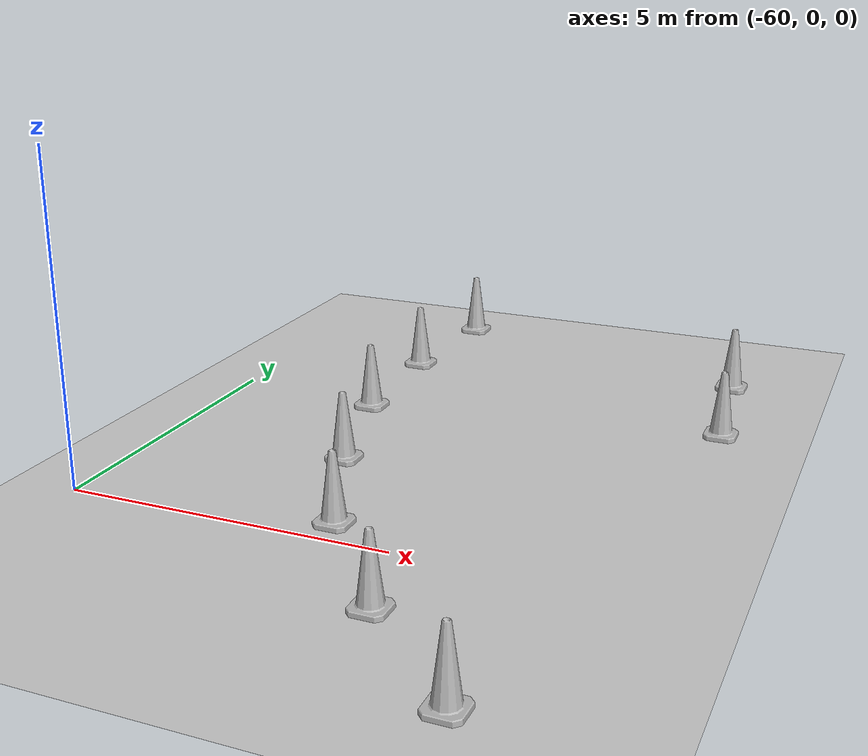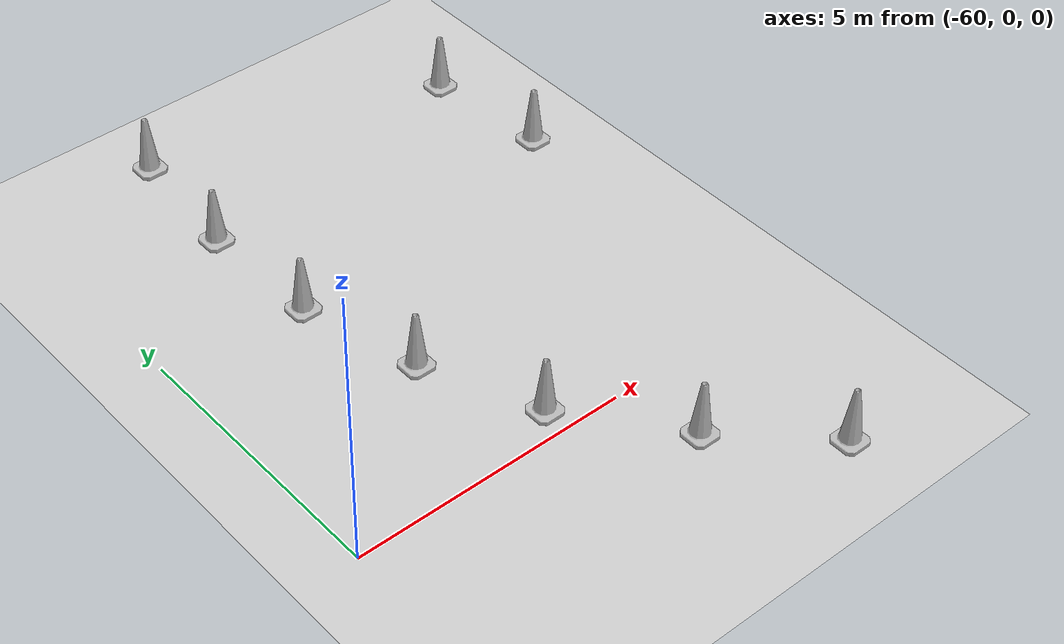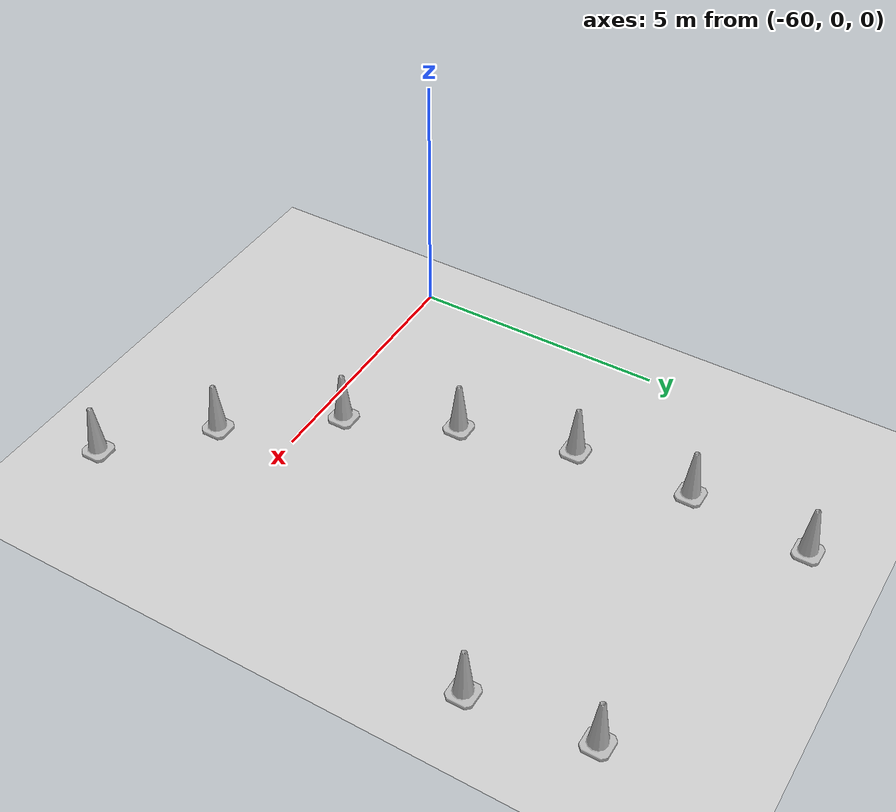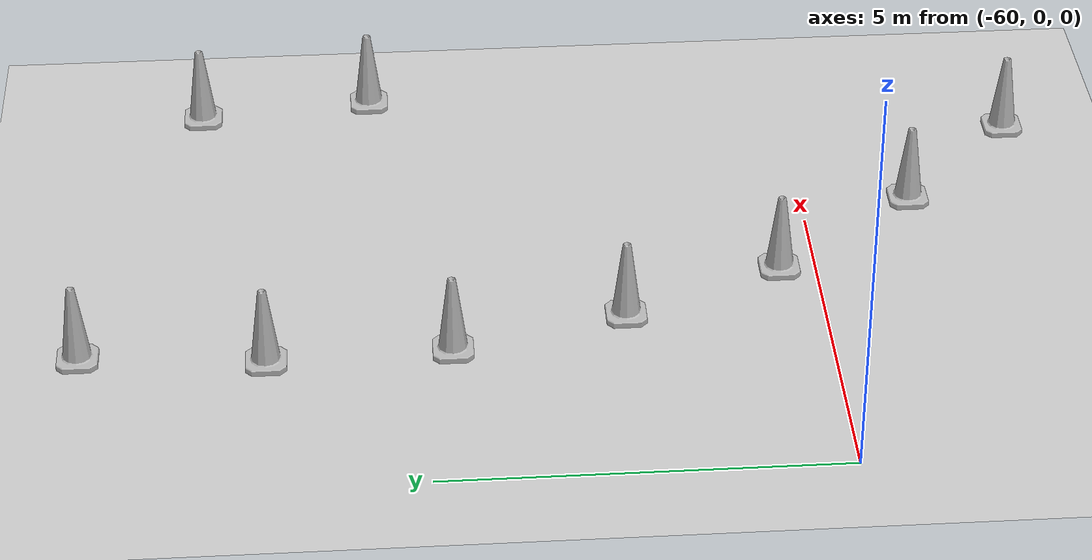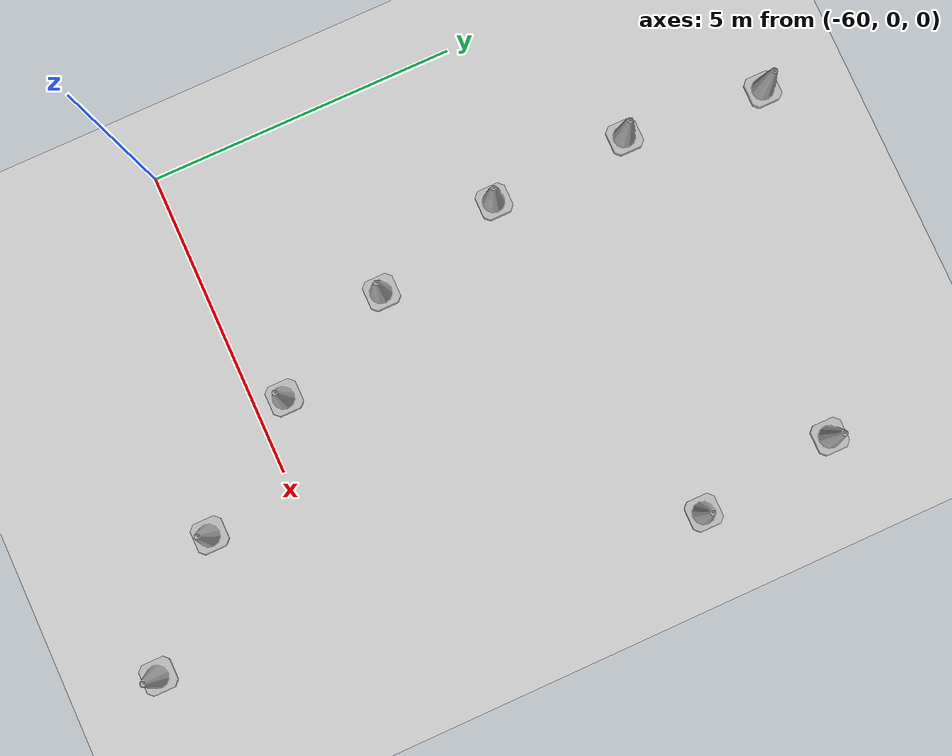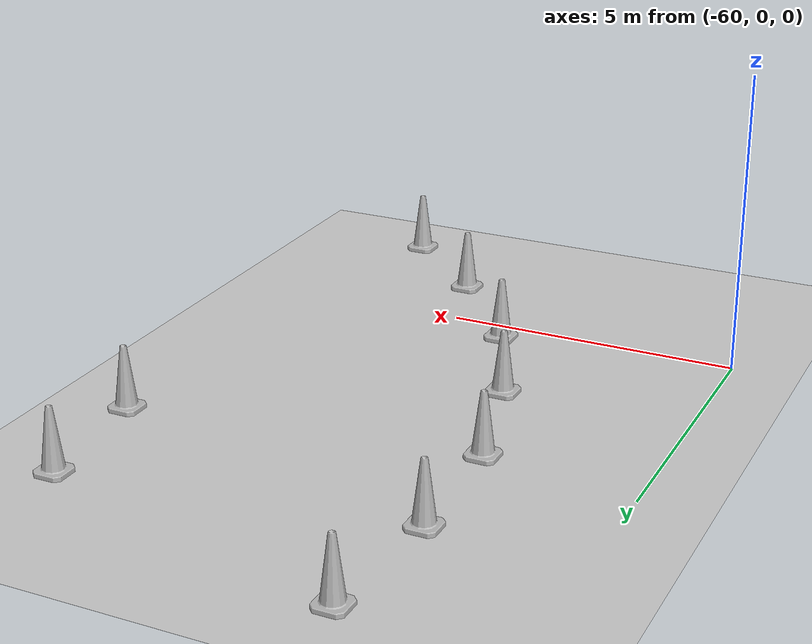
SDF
<sdf version="1.7">
 <world name="default">
  <model name="ground_plane">
   <static>1</static>
   <link name="link">
    <collision name="collision">
     <geometry><plane><normal>0 0 1</normal><size>125 125</size></plane></geometry>
     <surface>
      <contact><collide_bitmask>65535</collide_bitmask></contact>
      <friction><ode><mu>100</mu><mu2>50</mu2></ode></friction>
     </surface>
    </collision>
    <visual name="visual">
     <cast_shadows>0</cast_shadows>
     <geometry><plane><normal>0 0 1</normal><size>125 125</size></plane></geometry>
     <material>
      <script><uri>file://media/materials/scripts/gazebo.material</uri><name>Gazebo/Grey</name></script>
     </material>
    </visual>
   </link>
  </model>
  <model name="Construction Cone 139">
   <link name="link">
    <collision name="collision">
     <geometry>
      <mesh><scale>10 10 10</scale><uri>model://construction_cone/meshes/construction_cone.dae</uri></mesh>
     </geometry>
    </collision>
    <visual name="visual">
     <geometry>
      <mesh><scale>10 10 10</scale><uri>model://construction_cone/meshes/construction_cone.dae</uri></mesh>
     </geometry>
    </visual>
    <inertial>
     <inertia><ixx>1</ixx><ixy>0</ixy><ixz>0</ixz><iyy>1</iyy><iyz>0</iyz><izz>1</izz></inertia>
     <mass>1</mass>
    </inertial>
   </link>
   <pose>-57.38775161880874 9.245355827656049 0 0 0 0</pose>
  </model>
  <model name="Construction Cone 145">
   <link name="link">
    <collision name="collision">
     <geometry>
      <mesh><scale>10 10 10</scale><uri>model://construction_cone/meshes/construction_cone.dae</uri></mesh>
     </geometry>
    </collision>
    <visual name="visual">
     <geometry>
      <mesh><scale>10 10 10</scale><uri>model://construction_cone/meshes/construction_cone.dae</uri></mesh>
     </geometry>
    </visual>
    <inertial>
     <inertia><ixx>1</ixx><ixy>0</ixy><ixz>0</ixz><iyy>1</iyy><iyz>0</iyz><izz>1</izz></inertia>
     <mass>1</mass>
    </inertial>
   </link>
   <pose>-52.041751618808746 7.854855827656046 0 0 0 0</pose>
  </model>
  <model name="Construction Cone 151">
   <link name="link">
    <collision name="collision">
     <geometry>
      <mesh><scale>10 10 10</scale><uri>model://construction_cone/meshes/construction_cone.dae</uri></mesh>
     </geometry>
    </collision>
    <visual name="visual">
     <geometry>
      <mesh><scale>10 10 10</scale><uri>model://construction_cone/meshes/construction_cone.dae</uri></mesh>
     </geometry>
    </visual>
    <inertial>
     <inertia><ixx>1</ixx><ixy>0</ixy><ixz>0</ixz><iyy>1</iyy><iyz>0</iyz><izz>1</izz></inertia>
     <mass>1</mass>
    </inertial>
   </link>
   <pose>-57.59025161880874 6.950355827656047 0 0 0 0</pose>
  </model>
  <model name="Construction Cone 156">
   <link name="link">
    <collision name="collision">
     <geometry>
      <mesh><scale>10 10 10</scale><uri>model://construction_cone/meshes/construction_cone.dae</uri></mesh>
     </geometry>
    </collision>
    <visual name="visual">
     <geometry>
      <mesh><scale>10 10 10</scale><uri>model://construction_cone/meshes/construction_cone.dae</uri></mesh>
     </geometry>
    </visual>
    <inertial>
     <inertia><ixx>1</ixx><ixy>0</ixy><ixz>0</ixz><iyy>1</iyy><iyz>0</iyz><izz>1</izz></inertia>
     <mass>1</mass>
    </inertial>
   </link>
   <pose>-51.78525161880874 5.6003558276560454 0 0 0 0</pose>
  </model>
  <model name="Construction Cone 162">
   <link name="link">
    <collision name="collision">
     <geometry>
      <mesh><scale>10 10 10</scale><uri>model://construction_cone/meshes/construction_cone.dae</uri></mesh>
     </geometry>
    </collision>
    <visual name="visual">
     <geometry>
      <mesh><scale>10 10 10</scale><uri>model://construction_cone/meshes/construction_cone.dae</uri></mesh>
     </geometry>
    </visual>
    <inertial>
     <inertia><ixx>1</ixx><ixy>0</ixy><ixz>0</ixz><iyy>1</iyy><iyz>0</iyz><izz>1</izz></inertia>
     <mass>1</mass>
    </inertial>
   </link>
   <pose>-57.49575161880874 4.668855827656053 0 0 0 0</pose>
  </model>
  <model name="Construction Cone 170">
   <link name="link">
    <collision name="collision">
     <geometry>
      <mesh><scale>10 10 10</scale><uri>model://construction_cone/meshes/construction_cone.dae</uri></mesh>
     </geometry>
    </collision>
    <visual name="visual">
     <geometry>
      <mesh><scale>10 10 10</scale><uri>model://construction_cone/meshes/construction_cone.dae</uri></mesh>
     </geometry>
    </visual>
    <inertial>
     <inertia><ixx>1</ixx><ixy>0</ixy><ixz>0</ixz><iyy>1</iyy><iyz>0</iyz><izz>1</izz></inertia>
     <mass>1</mass>
    </inertial>
   </link>
   <pose>-56.915251618808746 2.4953558276560486 0 0 0 0</pose>
  </model>
  <model name="Construction Cone 179">
   <link name="link">
    <collision name="collision">
     <geometry>
      <mesh><scale>10 10 10</scale><uri>model://construction_cone/meshes/construction_cone.dae</uri></mesh>
     </geometry>
    </collision>
    <visual name="visual">
     <geometry>
      <mesh><scale>10 10 10</scale><uri>model://construction_cone/meshes/construction_cone.dae</uri></mesh>
     </geometry>
    </visual>
    <inertial>
     <inertia><ixx>1</ixx><ixy>0</ixy><ixz>0</ixz><iyy>1</iyy><iyz>0</iyz><izz>1</izz></inertia>
     <mass>1</mass>
    </inertial>
   </link>
   <pose>-56.03775161880874 0.47035582765605 0 0 0 0</pose>
  </model>
  <model name="Construction Cone 187">
   <link name="link">
    <collision name="collision">
     <geometry>
      <mesh><scale>10 10 10</scale><uri>model://construction_cone/meshes/construction_cone.dae</uri></mesh>
     </geometry>
    </collision>
    <visual name="visual">
     <geometry>
      <mesh><scale>10 10 10</scale><uri>model://construction_cone/meshes/construction_cone.dae</uri></mesh>
     </geometry>
    </visual>
    <inertial>
     <inertia><ixx>1</ixx><ixy>0</ixy><ixz>0</ixz><iyy>1</iyy><iyz>0</iyz><izz>1</izz></inertia>
     <mass>1</mass>
    </inertial>
   </link>
   <pose>-54.57975161880874 -1.40614417234395 0 0 0 0</pose>
  </model>
  <model name="Construction Cone 193">
   <link name="link">
    <collision name="collision">
     <geometry>
      <mesh><scale>10 10 10</scale><uri>model://construction_cone/meshes/construction_cone.dae</uri></mesh>
     </geometry>
    </collision>
    <visual name="visual">
     <geometry>
      <mesh><scale>10 10 10</scale><uri>model://construction_cone/meshes/construction_cone.dae</uri></mesh>
     </geometry>
    </visual>
    <inertial>
     <inertia><ixx>1</ixx><ixy>0</ixy><ixz>0</ixz><iyy>1</iyy><iyz>0</iyz><izz>1</izz></inertia>
     <mass>1</mass>
    </inertial>
   </link>
   <pose>-52.955251618808745 -2.9496441723439517 0 0 0 0</pose>
  </model>
 </world>
</sdf>
